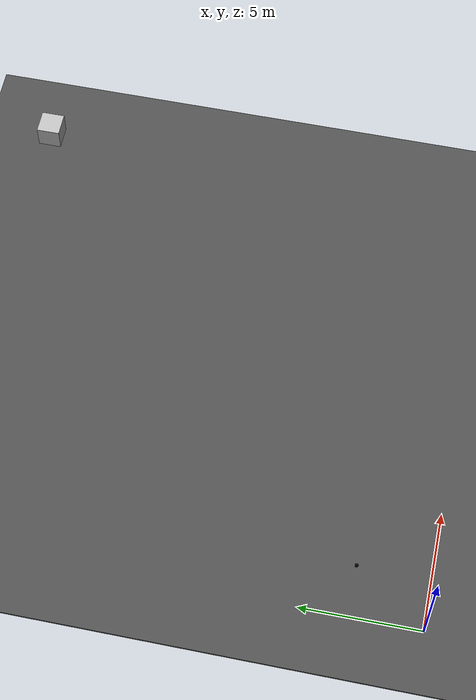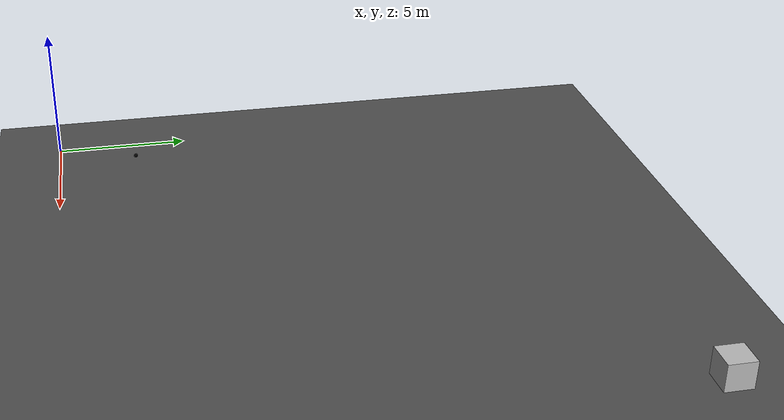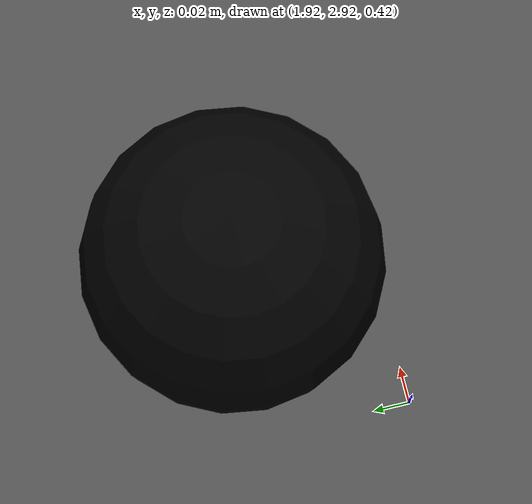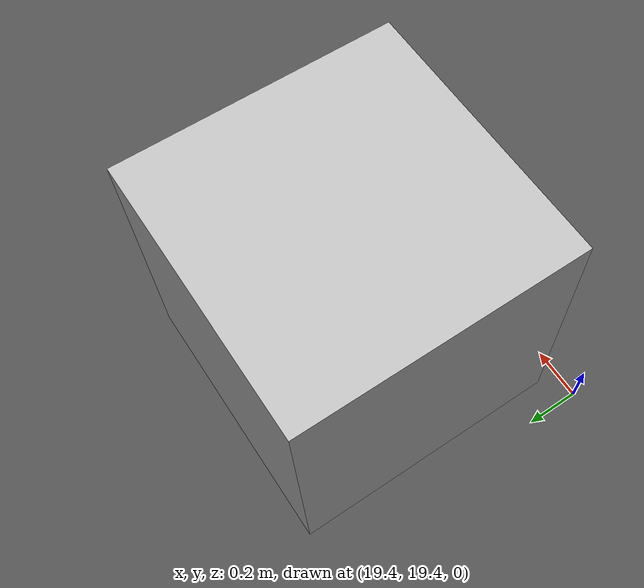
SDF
<sdf version="1.6">
 <world name="default">
  <light name="sun" type="directional">
   <pose>0 0 10 0 -0 0</pose>
   <diffuse>0.8 0.8 0.8 1</diffuse>
   <specular>0.2 0.2 0.2 1</specular>
   <attenuation>
    <range>1000</range>
    <constant>0.9</constant>
    <linear>0.01</linear>
    <quadratic>0.001</quadratic>
   </attenuation>
   <direction>-0.5 0.1 -0.9</direction>
  </light>
  <model name="ground_plane">
   <static>1</static>
   <link name="link">
    <collision name="collision">
     <geometry><plane><normal>0 0 1</normal><size>100 100</size></plane></geometry>
     <surface>
      <contact><collide_bitmask>65535</collide_bitmask></contact>
      <friction><ode><mu>100</mu><mu2>50</mu2></ode></friction>
     </surface>
    </collision>
    <visual name="visual">
     <cast_shadows>0</cast_shadows>
     <geometry><plane><normal>0 0 1</normal><size>100 100</size></plane></geometry>
     <material>
      <script><uri>file://media/materials/scripts/gazebo.material</uri><name>Gazebo/Grey</name></script>
     </material>
    </visual>
   </link>
  </model>
  <model name="asphalt_plane">
   <static>1</static>
   <link name="link">
    <collision name="collision"><geometry><box><size>200 200 0.1</size></box></geometry></collision>
    <visual name="visual">
     <cast_shadows>0</cast_shadows>
     <geometry><box><size>200 200 0.1</size></box></geometry>
     <material>
      <script>
       <uri>model://asphalt_plane/materials/scripts</uri>
       <uri>model://asphalt_plane/materials/textures</uri>
       <name>vrc/asphalt</name>
      </script>
     </material>
    </visual>
   </link>
  </model>
  <physics name="default_physics" default="0" type="ode">
   <ode>
    <solver>
     <type>quick</type>
     <iters>10</iters>
     <sor>1.3</sor>
     <use_dynamic_moi_rescaling>0</use_dynamic_moi_rescaling>
    </solver>
    <constraints>
     <cfm>0</cfm>
     <erp>0.2</erp>
     <contact_max_correcting_vel>100</contact_max_correcting_vel>
     <contact_surface_layer>0.001</contact_surface_layer>
    </constraints>
   </ode>
   <max_step_size>0.004</max_step_size>
   <real_time_factor>1</real_time_factor>
   <real_time_update_rate>250</real_time_update_rate>
  </physics>
  <gravity>0 0 -9.8066</gravity>
  <magnetic_field>6e-06 2.3e-05 -4.2e-05</magnetic_field>
  <atmosphere type="adiabatic"/>
  <scene><ambient>0.4 0.4 0.4 1</ambient><background>0.7 0.7 0.7 1</background><shadows>1</shadows></scene>
  <spherical_coordinates>
   <surface_model>EARTH_WGS84</surface_model>
   <latitude_deg>0</latitude_deg>
   <longitude_deg>0</longitude_deg>
   <elevation>0</elevation>
   <heading_deg>0</heading_deg>
  </spherical_coordinates>
  <model name="apriltag">
   <static>0</static>
   <link name="link">
    <collision name="collision"><geometry><box><size>1 1 1</size></box></geometry></collision>
    <visual name="visual">
     <cast_shadows>0</cast_shadows>
     <geometry><box><size>1 1 1</size></box></geometry>
     <material><script><name>AprilTag/Image</name><uri>__default__</uri></script></material>
    </visual>
    <sensor name="my_contact" type="contact"><contact><collision>collision</collision></contact></sensor>
    <inertial>
     <inertia><ixx>1</ixx><ixy>0</ixy><ixz>0</ixz><iyy>1</iyy><iyz>0</iyz><izz>1</izz></inertia>
     <mass>1</mass>
    </inertial>
   </link>
   <pose>20 20 0.55 0 -0 0.000787</pose>
  </model>
  <model name="sphere">
   <link name="link">
    <pose>2 3 0.5 0 0 0</pose>
    <scale>0.8 0.8 0.8</scale>
    <collision name="collision"><geometry><sphere><radius>0.08</radius></sphere></geometry></collision>
    <visual name="visual">
     <geometry><sphere><radius>0.08</radius></sphere></geometry>
     <material>
      <ambient>0 0 0 1</ambient>
      <diffuse>0 0 0 1</diffuse>
      <specular>0.1 0.1 0.1 1</specular>
      <emissive>0 0 0 0</emissive>
     </material>
    </visual>
   </link>
  </model>
 </world>
</sdf>
